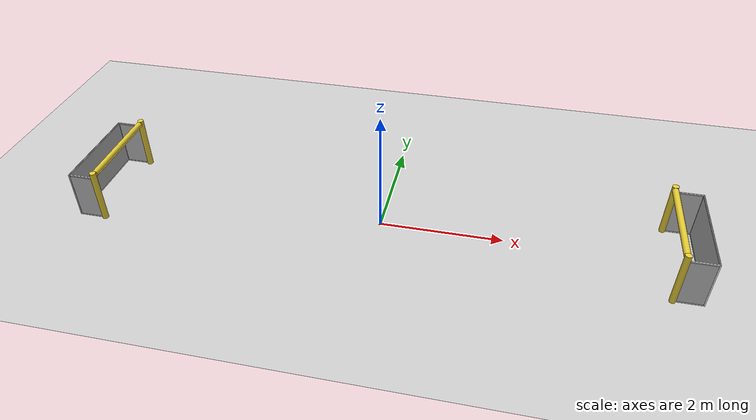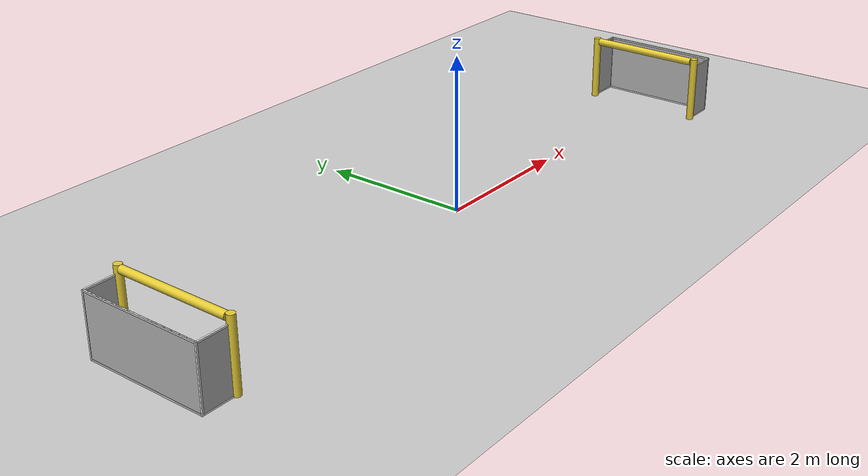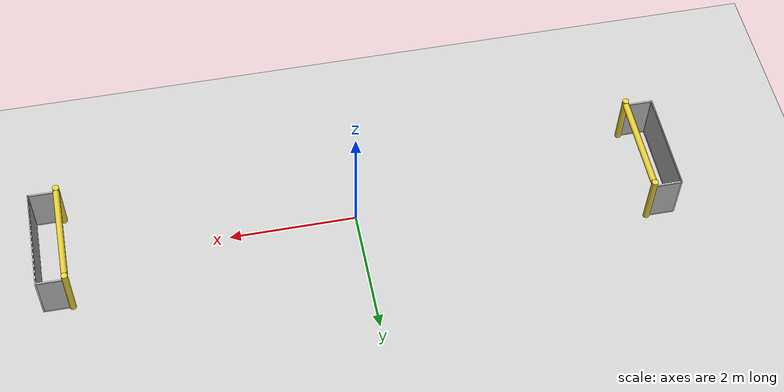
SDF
<sdf version="1.5">
 <world name="game_field">
  <include><uri>model://sun</uri></include>
  <include><uri>model://ground_plane</uri></include>
  <model name="goal1"><include><uri>model://robocup14_spl_goal</uri><pose>4.5 0 0 0 0 0</pose></include></model>
  <model name="goal2">
   <include><uri>model://robocup14_spl_goal</uri><pose>-4.5 0 0 0 0 3.14</pose></include>
  </model>
  <model name="ball"><include><uri>model://robocup_spl_ball</uri></include></model>
 </world>
</sdf>

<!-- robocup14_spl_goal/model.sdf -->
<sdf version="1.5">
  <model name="RoboCup 2014 SPL Goal">
    <static>true</static>
    <link name="left_post">
      <pose>0 0.8 0.45 0 0 0</pose>
      <collision name="collision">
        <geometry>
          <cylinder>
            <radius>0.05</radius>
            <length>0.9</length>
          </cylinder>
        </geometry>
      </collision>
      <visual name="visual">
        <geometry>
          <cylinder>
            <radius>0.05</radius>
            <length>0.9</length>
          </cylinder>
        </geometry>
        <material>
          <script>
            <uri>file://media/materials/scripts/gazebo.material</uri>
            <name>Gazebo/ZincYellow</name>
          </script>
        </material>
      </visual>
    </link>
    <link name="left_support_horiz_lower">
      <pose>0.24 0.8 0.01 0 0 0</pose>
      <collision name="collision">
        <geometry>
          <box>
            <size>0.38 0.02 0.02</size>
          </box>
        </geometry>
      </collision>
      <visual name="visual">
        <geometry>
          <box>
            <size>0.38 0.02 0.02</size>
          </box>
        </geometry>
        <material>
          <script>
            <uri>file://media/materials/scripts/gazebo.material</uri>
            <name>Gazebo/White</name>
          </script>
        </material>
      </visual>
    </link>
    <link name="left_support_horiz_upper">
      <pose>0.24 0.8 0.79 0 0 0</pose>
      <collision name="collision">
        <geometry>
          <box>
            <size>0.38 0.02 0.02</size>
          </box>
        </geometry>
      </collision>
      <visual name="visual">
        <geometry>
          <box>
            <size>0.38 0.02 0.02</size>
          </box>
        </geometry>
        <material>
          <script>
            <uri>file://media/materials/scripts/gazebo.material</uri>
            <name>Gazebo/White</name>
          </script>
        </material>
      </visual>
    </link>
    <link name="left_support_vertical">
      <pose>0.44 0.8 0.4 0 1.5708 0</pose>
      <collision name="collision">
        <geometry>
          <box>
            <size>0.80 0.02 0.02</size>
          </box>
        </geometry>
      </collision>
      <visual name="visual">
        <geometry>
          <box>
            <size>0.80 0.02 0.02</size>
          </box>
        </geometry>
        <material>
          <script>
            <uri>file://media/materials/scripts/gazebo.material</uri>
            <name>Gazebo/White</name>
          </script>
        </material>
      </visual>
    </link>
    <link name="right_support_horiz_lower">
      <pose>0.24 -0.8 0.01 0 0 0</pose>
      <collision name="collision">
        <geometry>
          <box>
            <size>0.38 0.02 0.02</size>
          </box>
        </geometry>
      </collision>
      <visual name="visual">
        <geometry>
          <box>
            <size>0.38 0.02 0.02</size>
          </box>
        </geometry>
        <material>
          <script>
            <uri>file://media/materials/scripts/gazebo.material</uri>
            <name>Gazebo/White</name>
          </script>
        </material>
      </visual>
    </link>
    <link name="right_support_horiz_upper">
      <pose>0.24 -0.8 0.79 0 0 0</pose>
      <collision name="collision">
        <geometry>
          <box>
            <size>0.38 0.02 0.02</size>
          </box>
        </geometry>
      </collision>
      <visual name="visual">
        <geometry>
          <box>
            <size>0.38 0.02 0.02</size>
          </box>
        </geometry>
        <material>
          <script>
            <uri>file://media/materials/scripts/gazebo.material</uri>
            <name>Gazebo/White</name>
          </script>
        </material>
      </visual>
    </link>
    <link name="right_support_vertical">
      <pose>0.44 -0.8 0.4 0 1.5708 0</pose>
      <collision name="collision">
        <geometry>
          <box>
            <size>0.80 0.02 0.02</size>
          </box>
        </geometry>
      </collision>
      <visual name="visual">
        <geometry>
          <box>
            <size>0.80 0.02 0.02</size>
          </box>
        </geometry>
        <material>
          <script>
            <uri>file://media/materials/scripts/gazebo.material</uri>
            <name>Gazebo/White</name>
          </script>
        </material>
      </visual>
    </link>
    <link name="center_support_horiz_lower">
      <pose>0.44 0 0.01 0 1.5708 0</pose>
      <collision name="collision">
        <geometry>
          <box>
            <size>0.02 1.58 0.02</size>
          </box>
        </geometry>
      </collision>
      <visual name="visual">
        <geometry>
          <box>
            <size>0.02 1.58 0.02</size>
          </box>
        </geometry>
        <material>
          <script>
            <uri>file://media/materials/scripts/gazebo.material</uri>
            <name>Gazebo/White</name>
          </script>
        </material>
      </visual>
    </link>
    <link name="center_support_horiz_upper">
      <pose>0.44 0 0.79 0 1.5708 0</pose>
      <collision name="collision">
        <geometry>
          <box>
            <size>0.02 1.58 0.02</size>
          </box>
        </geometry>
      </collision>
      <visual name="visual">
        <geometry>
          <box>
            <size>0.02 1.58 0.02</size>
          </box>
        </geometry>
        <material>
          <script>
            <uri>file://media/materials/scripts/gazebo.material</uri>
            <name>Gazebo/White</name>
          </script>
        </material>
      </visual>
    </link>
    <link name="right_post">
      <pose>0 -0.8 0.45 0 0 0</pose>
      <collision name="collision">
        <geometry>
          <cylinder>
            <radius>0.05</radius>
            <length>0.9</length>
          </cylinder>
        </geometry>
      </collision>
      <visual name="visual">
        <geometry>
          <cylinder>
            <radius>0.05</radius>
            <length>0.9</length>
          </cylinder>
        </geometry>
        <material>
          <script>
            <uri>file://media/materials/scripts/gazebo.material</uri>
            <name>Gazebo/ZincYellow</name>
          </script>
        </material>
      </visual>
    </link>
    <link name="crossbar">
      <pose>0 0 0.85 1.57 1.57 0</pose>
      <collision name="collision">
        <geometry>
          <cylinder>
            <radius>0.05</radius>
            <length>1.5</length>
          </cylinder>
        </geometry>
      </collision>
      <visual name="visual">
        <geometry>
          <cylinder>
            <radius>0.05</radius>
            <length>1.5</length>
          </cylinder>
        </geometry>
        <material>
          <script>
            <uri>file://media/materials/scripts/gazebo.material</uri>
            <name>Gazebo/ZincYellow</name>
          </script>
        </material>
      </visual>
    </link>
    <link name="center_net">
      <pose>0.44 0 0.40 0 0 0</pose>
      <collision name="collision">
        <geometry>
          <box>
            <size>0.01 1.6 0.80</size>
          </box>
        </geometry>
      </collision>
      <visual name="visual">
        <geometry>
          <box>
            <size>0.01 1.6 0.80</size>
          </box>
        </geometry>
        <material>
          <script>
            <uri>model://../model_source/models/robocup09_spl_field/materials/scripts/</uri>
            <uri>model://../model_source/models/robocup09_spl_field/materials/textures/</uri>
            <name>RoboCup/Net</name>
          </script>
        </material>
      </visual>
    </link>
    <link name="left_net">
      <pose>0.24 0.8 0.40 0 0 0</pose>
      <collision name="collision">
        <geometry>
          <box>
            <size>0.38 0.01 0.76</size>
          </box>
        </geometry>
      </collision>
      <visual name="visual">
        <geometry>
          <box>
            <size>0.38 0.01 0.76</size>
          </box>
        </geometry>
        <material>
          <script>
            <uri>model://../model_source/models/robocup09_spl_field/materials/scripts/</uri>
            <uri>model://../model_source/models/robocup09_spl_field/materials/textures/</uri>
            <name>RoboCup/Net</name>
          </script>
        </material>
      </visual>
    </link>
    <link name="right_net">
      <pose>0.24 -0.8 0.40 0 0 0</pose>
      <collision name="collision">
        <geometry>
          <box>
            <size>0.38 0.01 0.76</size>
          </box>
        </geometry>
      </collision>
      <visual name="visual">
        <geometry>
          <box>
            <size>0.38 0.01 0.76</size>
          </box>
        </geometry>
        <material>
          <script>
            <uri>model://../model_source/models/robocup09_spl_field/materials/scripts/</uri>
            <uri>model://../model_source/models/robocup09_spl_field/materials/textures/</uri>
            <name>RoboCup/Net</name>
          </script>
        </material>
      </visual>
    </link>
  </model>
</sdf>

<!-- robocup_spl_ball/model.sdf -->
<sdf version="1.5">
  <model name="robocup_spl_ball">
    <static>false</static>
    <link name="ball">
      <inertial>
        <mass>0.0056</mass>
        <!-- inertia based on solid sphere 2/5 mr^2 -->
        <inertia>
          <ixx>2.37e-6</ixx>
          <iyy>2.37e-6</iyy>
          <izz>2.37e-6</izz>
          <ixy>0</ixy>
          <ixz>0</ixz>
          <iyz>0</iyz>
        </inertia>
      </inertial>
      <collision name="collision">
        <geometry>
          <sphere>
            <radius>0.0325</radius>
          </sphere>
        </geometry>
      </collision>
      <visual name="visual">
        <geometry>
          <sphere>
            <radius>0.0325</radius>
          </sphere>
        </geometry>
        <material>
          <script>
            <uri>file://media/materials/scripts/gazebo.material</uri>
            <name>Gazebo/RedBright</name>
          </script>
        </material>
      </visual>
    </link>
  </model>
</sdf>
